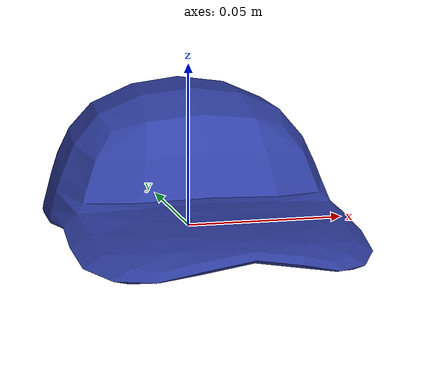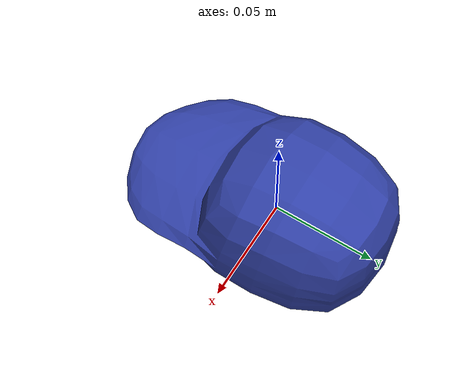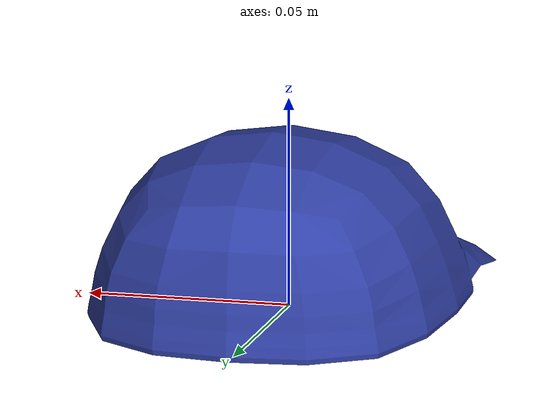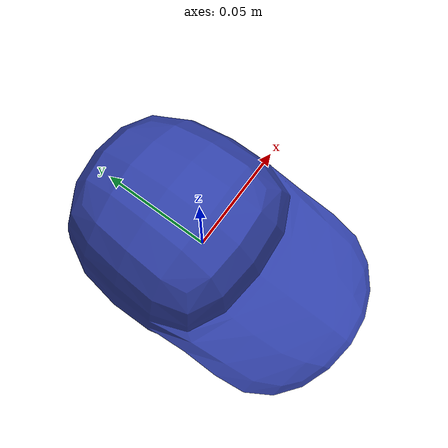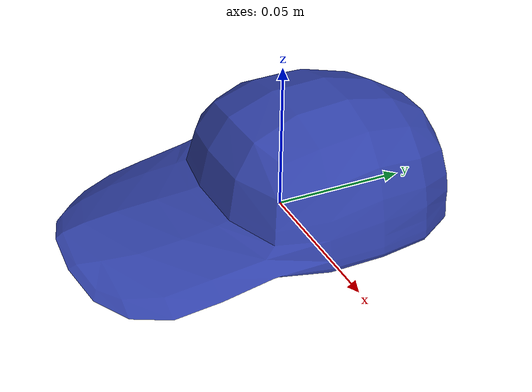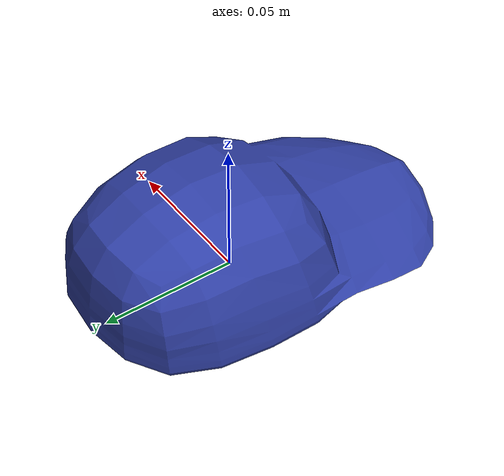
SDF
<?xml version="1.0" ?>

<sdf version="1.4">
  <model name="iai_hat">
    <static>true</static>
    <link name="iai_hat">
      <collision name="collision">
	<geometry>
            <mesh>
	      <uri>model://hat/hat.dae</uri>
	    </mesh>
          </geometry>
      </collision>
      <visual name="vis">
        <cast_shadows>false</cast_shadows>

	<geometry>
            <mesh>
	      <uri>model://hat/hat.dae</uri>
	    </mesh>
          </geometry>
      </visual>

    </link>
          <plugin name="scanable"
              filename="libiai_object_transmitter.so">
            <object_type>terrain</object_type><!-- this is used to determine -->
            <absolute_detection>true</absolute_detection>
            <attribute key="otype" value="hat"/>
            <attribute key="manmade" value="true"/>
            <attribute key="navigation" value="inner"/>
      </plugin>
  </model>
</sdf>
